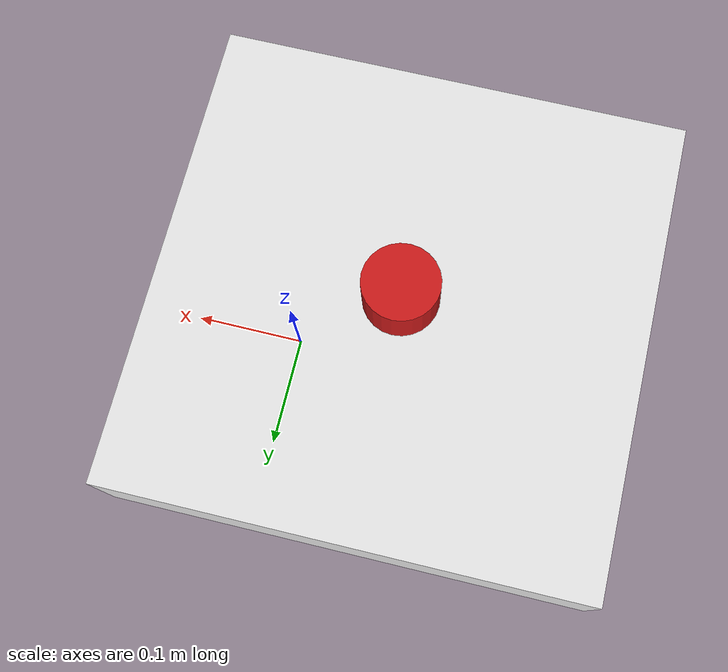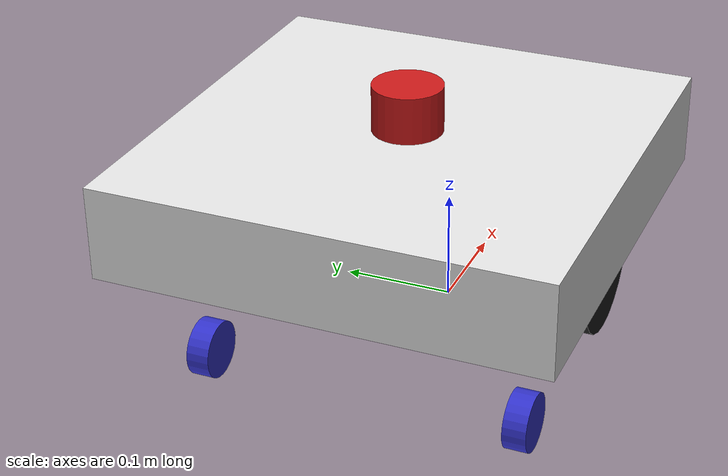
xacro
<?xml version="1.0"?>
<robot xmlns:xacro="http://www.ros.org/wiki/xacro" name="front_diff_robot">

  <!-- ROBOT PARAMETERS                                        -->
  <xacro:property name="chassis_length"       value="0.38"/>
  <xacro:property name="chassis_width"        value="0.38"/>
  <xacro:property name="chassis_height"       value="0.08"/>
  <xacro:property name="chassis_mass"         value="5.0"/>
  <xacro:property name="base_plate_elevation" value="0.13175"/> <!-- 131.75mm above ground -->

  <!-- Hub Wheels: 13cm diameter = 6.5cm (0.065m) radius -->
  <xacro:property name="hub_radius"           value="0.065"/>
  <xacro:property name="hub_width"            value="0.038"/>

  <!-- Casters: 2.5cm (0.025m) radius -->
  <xacro:property name="caster_radius"        value="0.025"/>
  <xacro:property name="caster_width"         value="0.020"/>

  <!-- Wheelbase & Track Width -->
  <xacro:property name="wheelbase"            value="0.1985"/>   <!-- 198.5mm -->
  <xacro:property name="track_width"          value="0.26000"/>  <!-- 260mm track width -->

  <xacro:property name="pi"                   value="3.14159265359"/>

  <!-- Sensors -->
  <xacro:property name="lidar_radius"         value="0.03"/>
  <xacro:property name="lidar_height"         value="0.04"/>

  <!-- MATERIALS                                               -->
  <material name="white"><color rgba="0.9 0.9 0.9 1.0"/></material>
  <material name="black"><color rgba="0.1 0.1 0.1 1.0"/></material>
  <material name="blue"><color rgba="0.2 0.2 0.8 1.0"/></material>
  <material name="red"><color rgba="0.8 0.1 0.1 1.0"/></material>

  <!-- INERTIA MACROS                                          -->
  <xacro:macro name="box_inertia" params="m w h d">
    <inertial>
      <mass value="${m}"/>
      <inertia ixx="${(m/12) * (h*h + d*d)}" ixy="0.0" ixz="0.0"
               iyy="${(m/12) * (w*w + d*d)}" iyz="0.0"
               izz="${(m/12) * (w*w + h*h)}"/>
    </inertial>
  </xacro:macro>

  <xacro:macro name="cylinder_inertia" params="m r h">
    <inertial>
      <mass value="${m}"/>
      <inertia ixx="${(m/12) * (3*r*r + h*h)}" ixy="0" ixz="0"
               iyy="${(m/12) * (3*r*r + h*h)}" iyz="0"
               izz="${(m/2) * (r*r)}"/>
    </inertial>
  </xacro:macro>

  <!-- BASE FOOTPRINT & BASE LINK                              -->
  <link name="base_footprint"/>

  <!-- Red axis points toward the Hub Wheels -->
  <joint name="base_footprint_joint" type="fixed">
    <parent link="base_footprint"/>
    <child link="base_link"/>
    <origin xyz="0 0 ${hub_radius}" rpy="0 0 0"/>
  </joint>

  <link name="base_link"/>

  <!-- CHASSIS (Centered between Hub Wheels and Casters)       -->
  <link name="chassis">
    <visual>
      <origin xyz="0 0 0" rpy="0 0 0"/>
      <geometry>
        <box size="${chassis_length} ${chassis_width} ${chassis_height}"/>
      </geometry>
      <material name="white"/>
    </visual>
    <collision>
      <origin xyz="0 0 0" rpy="0 0 0"/>
      <geometry>
        <box size="${chassis_length} ${chassis_width} ${chassis_height}"/>
      </geometry>
    </collision>
    <xacro:box_inertia m="${chassis_mass}" w="${chassis_length}" h="${chassis_width}" d="${chassis_height}"/>
  </link>

  <joint name="chassis_joint" type="fixed">
    <parent link="base_link"/>
    <child link="chassis"/>
    <origin xyz="${-wheelbase/2} 0 ${base_plate_elevation - hub_radius + (chassis_height/2)}" rpy="0 0 0"/>
  </joint>

  <!-- HUB WHEELS (Located at X = 0 -> RED AXIS POINTS HERE!)  -->
  <xacro:macro name="drive_wheel" params="prefix y_offset">
    <link name="${prefix}_wheel">
      <visual>
        <origin xyz="0 0 0" rpy="${pi/2} 0 0"/>
        <geometry>
          <cylinder radius="${hub_radius}" length="${hub_width}"/>
        </geometry>
        <material name="black"/>
      </visual>
      <collision>
        <origin xyz="0 0 0" rpy="${pi/2} 0 0"/>
        <geometry>
          <cylinder radius="${hub_radius}" length="${hub_width}"/>
        </geometry>
      </collision>
      <xacro:cylinder_inertia m="1.0" r="${hub_radius}" h="${hub_width}"/>
    </link>

    <joint name="${prefix}_wheel_joint" type="continuous">
      <parent link="base_link"/>
      <child link="${prefix}_wheel"/>
      <!-- Located at X = 0 -->
      <origin xyz="0 ${y_offset} 0" rpy="0 0 0"/>
      <axis xyz="0 1 0"/>
    </joint>
  </xacro:macro>

  <xacro:drive_wheel prefix="left" y_offset="${track_width/2}"/>
  <xacro:drive_wheel prefix="right" y_offset="${-track_width/2}"/>

  <!-- CASTER WHEELS (Located behind Hub Wheels at -wheelbase) -->
  <xacro:macro name="caster_wheel" params="prefix y_offset">
    <link name="${prefix}_caster">
      <visual>
        <origin xyz="0 0 0" rpy="${pi/2} 0 0"/>
        <geometry>
          <cylinder radius="${caster_radius}" length="${caster_width}"/>
        </geometry>
        <material name="blue"/>
      </visual>
      <collision>
        <origin xyz="0 0 0" rpy="${pi/2} 0 0"/>
        <geometry>
          <sphere radius="${caster_radius}"/>
        </geometry>
      </collision>
      <xacro:cylinder_inertia m="0.2" r="${caster_radius}" h="${caster_width}"/>
    </link>

    <joint name="${prefix}_caster_joint" type="fixed">
      <parent link="base_link"/>
      <child link="${prefix}_caster"/>
      <!-- Located at -wheelbase -->
      <origin xyz="-${wheelbase} ${y_offset} -${hub_radius - caster_radius}" rpy="0 0 0"/>
      <axis xyz="0 1 0"/>
    </joint>

    <gazebo reference="${prefix}_caster">
      <mu1>0.0</mu1>
      <mu2>0.0</mu2>
      <material>Gazebo/Blue</material>
    </gazebo>
  </xacro:macro>

  <!-- Casters placed inside the chassis footprint -->
  <xacro:caster_wheel prefix="left" y_offset="${(chassis_width/2) - 0.05}"/>
  <xacro:caster_wheel prefix="right" y_offset="-${(chassis_width/2) - 0.05}"/>

  <!-- SENSORS: LIDAR (Facing the direction of Hub Wheels)     -->
  <link name="lidar_link">
    <visual>
      <origin xyz="0 0 0" rpy="0 0 0"/>
      <geometry>
        <cylinder radius="${lidar_radius}" length="${lidar_height}"/>
      </geometry>
      <material name="red"/>
    </visual>
    <collision>
      <origin xyz="0 0 0" rpy="0 0 0"/>
      <geometry>
        <cylinder radius="${lidar_radius}" length="${lidar_height}"/>
      </geometry>
    </collision>
    <xacro:cylinder_inertia m="0.12" r="${lidar_radius}" h="${lidar_height}"/>
  </link>

  <joint name="lidar_joint" type="fixed">
    <parent link="chassis"/>
    <child link="lidar_link"/>
    <!-- Positioned on top of chassis, Red axis points to Hub Wheels -->
    <origin xyz="0 0 ${chassis_height/2 + lidar_height/2}" rpy="0 0 0"/>
  </joint>

  <!-- Gazebo LiDAR Plugin -->
  <gazebo reference="lidar_link">
    <material>Gazebo/Red</material>
    <sensor type="ray" name="lidar_sensor">
      <pose>0 0 0 0 0 0</pose>
      <visualize>false</visualize>
      <update_rate>10</update_rate>
      <ray>
        <scan>
          <horizontal>
            <samples>180</samples>
            <resolution>1</resolution>
            <min_angle>-3.14159</min_angle>
            <max_angle>3.14159</max_angle>
          </horizontal>
        </scan>
        <range>
          <min>0.15</min>
          <max>12.0</max>
          <resolution>0.01</resolution>
        </range>
      </ray>
      <plugin name="gazebo_ros_lidar" filename="libgazebo_ros_ray_sensor.so">
        <ros>
          <remapping>~/out:=scan</remapping>
        </ros>
        <output_type>sensor_msgs/LaserScan</output_type>
        <frame_name>lidar_link</frame_name>
      </plugin>
    </sensor>
  </gazebo>

  <!-- SENSORS: IMU (Red axis points to Hub Wheels)            -->
  <link name="imu_link">
    <visual>
      <geometry>
        <box size="0.02 0.02 0.01"/>
      </geometry>
      <material name="black"/>
    </visual>
    <xacro:box_inertia m="0.05" w="0.02" h="0.02" d="0.01"/>
  </link>

  <joint name="imu_joint" type="fixed">
    <parent link="chassis"/>
    <child link="imu_link"/>
    <origin xyz="0 0 0" rpy="0 0 0"/>
  </joint>

  <gazebo reference="imu_link">
    <sensor type="imu" name="imu_sensor">
      <always_on>true</always_on>
      <update_rate>20</update_rate>
      <plugin name="gazebo_ros_imu" filename="libgazebo_ros_imu_sensor.so">
        <ros>
          <remapping>~/out:=imu/data</remapping>
        </ros>
        <initial_orientation_as_reference>false</initial_orientation_as_reference>
        <frame_name>imu_link</frame_name>
      </plugin>
    </sensor>
  </gazebo>

  <!-- GAZEBO DIFFERENTIAL DRIVE PLUGIN                        -->
  <gazebo>
    <plugin name="front_diff_drive" filename="libgazebo_ros_diff_drive.so">
      <left_joint>left_wheel_joint</left_joint>
      <right_joint>right_wheel_joint</right_joint>
      <wheel_separation>${track_width}</wheel_separation>
      <wheel_diameter>${hub_radius * 2}</wheel_diameter>
      <max_wheel_torque>20</max_wheel_torque>
      <max_wheel_acceleration>2.0</max_wheel_acceleration>
      <publish_odom>true</publish_odom>
      <publish_odom_tf>true</publish_odom_tf>
      <publish_wheel_tf>true</publish_wheel_tf>
      <odometry_frame>odom</odometry_frame>
      <robot_base_frame>base_footprint</robot_base_frame>
    </plugin>
  </gazebo>

</robot>
